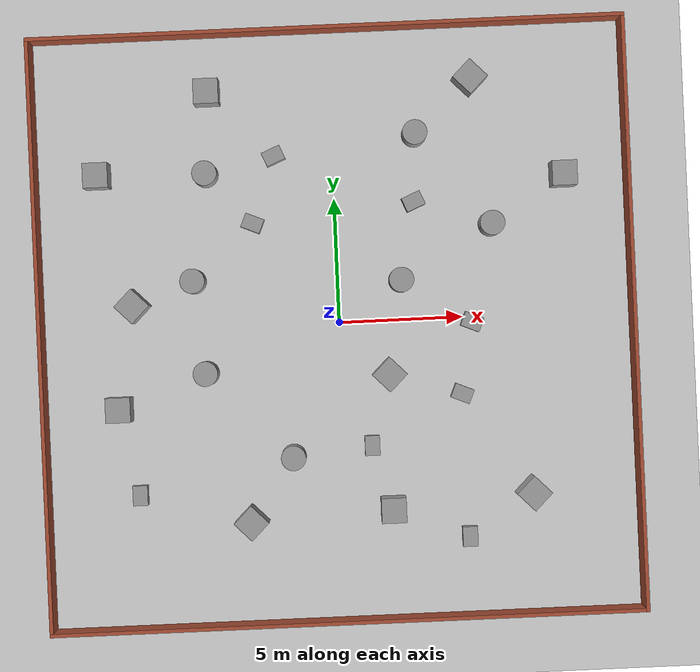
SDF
<sdf version="1.6">
 <world name="default">
  <light name="sun" type="directional">
   <pose>0 0 10 0 -0 0</pose>
   <diffuse>0.8 0.8 0.8 1</diffuse>
   <specular>0.2 0.2 0.2 1</specular>
   <attenuation>
    <range>1000</range>
    <constant>0.9</constant>
    <linear>0.01</linear>
    <quadratic>0.001</quadratic>
   </attenuation>
   <direction>-0.5 0.1 -0.9</direction>
  </light>
  <model name="ground_plane">
   <static>1</static>
   <link name="link">
    <collision name="collision">
     <geometry><plane><normal>0 0 1</normal><size>100 100</size></plane></geometry>
     <surface><friction><ode><mu>100</mu><mu2>50</mu2></ode></friction></surface>
    </collision>
    <visual name="visual">
     <cast_shadows>0</cast_shadows>
     <geometry><plane><normal>0 0 1</normal><size>100 100</size></plane></geometry>
     <material>
      <script><uri>file://media/materials/scripts/gazebo.material</uri><name>Gazebo/Grey</name></script>
     </material>
    </visual>
   </link>
  </model>
  <gravity>0 0 -9.8</gravity>
  <magnetic_field>6e-06 2.3e-05 -4.2e-05</magnetic_field>
  <atmosphere type="adiabatic"/>
  <physics name="default_physics" default="0" type="ode">
   <max_step_size>0.001</max_step_size>
   <real_time_factor>1</real_time_factor>
   <real_time_update_rate>1000</real_time_update_rate>
  </physics>
  <scene><ambient>0.4 0.4 0.4 1</ambient><background>0.7 0.7 0.7 1</background><shadows>1</shadows></scene>
  <spherical_coordinates>
   <surface_model>EARTH_WGS84</surface_model>
   <latitude_deg>0</latitude_deg>
   <longitude_deg>0</longitude_deg>
   <elevation>0</elevation>
   <heading_deg>0</heading_deg>
  </spherical_coordinates>
  <model name="24*24_brick_maze">
   <pose>-0.106814 -0.103419 0 0 -0 0</pose>
   <link name="Wall_0">
    <collision name="Wall_0_Collision">
     <geometry><box><size>24 0.15 1</size></box></geometry>
     <pose>0 0 0.5 0 -0 0</pose>
    </collision>
    <visual name="Wall_0_Visual">
     <pose>0 0 0.5 0 -0 0</pose>
     <geometry><box><size>24 0.15 1</size></box></geometry>
     <material>
      <script><uri>file://media/materials/scripts/gazebo.material</uri><name>Gazebo/Bricks</name></script>
      <ambient>1 1 1 1</ambient>
     </material>
     <meta><layer>0</layer></meta>
    </visual>
    <pose>0 11.925 0 0 -0 0</pose>
   </link>
   <link name="Wall_2">
    <collision name="Wall_2_Collision">
     <geometry><box><size>24 0.15 1</size></box></geometry>
     <pose>0 0 0.5 0 -0 0</pose>
    </collision>
    <visual name="Wall_2_Visual">
     <pose>0 0 0.5 0 -0 0</pose>
     <geometry><box><size>24 0.15 1</size></box></geometry>
     <material>
      <script><uri>file://media/materials/scripts/gazebo.material</uri><name>Gazebo/Bricks</name></script>
      <ambient>1 1 1 1</ambient>
     </material>
     <meta><layer>0</layer></meta>
    </visual>
    <pose>11.925 0 0 0 -0 -1.5708</pose>
   </link>
   <link name="Wall_4">
    <collision name="Wall_4_Collision">
     <geometry><box><size>24 0.15 1</size></box></geometry>
     <pose>0 0 0.5 0 -0 0</pose>
    </collision>
    <visual name="Wall_4_Visual">
     <pose>0 0 0.5 0 -0 0</pose>
     <geometry><box><size>24 0.15 1</size></box></geometry>
     <material>
      <script><uri>file://media/materials/scripts/gazebo.material</uri><name>Gazebo/Bricks</name></script>
      <ambient>1 1 1 1</ambient>
     </material>
     <meta><layer>0</layer></meta>
    </visual>
    <pose>0 -11.925 0 0 -0 3.14159</pose>
   </link>
   <link name="Wall_7">
    <collision name="Wall_7_Collision">
     <geometry><box><size>24 0.15 1</size></box></geometry>
     <pose>0 0 0.5 0 -0 0</pose>
    </collision>
    <visual name="Wall_7_Visual">
     <pose>0 0 0.5 0 -0 0</pose>
     <geometry><box><size>24 0.15 1</size></box></geometry>
     <material>
      <script><uri>file://media/materials/scripts/gazebo.material</uri><name>Gazebo/Bricks</name></script>
      <ambient>1 1 1 1</ambient>
     </material>
     <meta><layer>0</layer></meta>
    </visual>
    <pose>-11.925 0 0 0 -0 1.5708</pose>
   </link>
   <static>1</static>
  </model>
  <model name="box_1_left">
   <link name="link_0">
    <inertial>
     <mass>1</mass>
     <inertia>
      <ixx>0.166667</ixx>
      <ixy>0</ixy>
      <ixz>0</ixz>
      <iyy>0.166667</iyy>
      <iyz>0</iyz>
      <izz>0.166667</izz>
     </inertia>
     <pose>0 0 0 0 -0 0.4</pose>
    </inertial>
    <pose>0 0 0.5 0 -0 0.38</pose>
    <visual name="visual">
     <pose>0 0 0 0 -0 0.4</pose>
     <geometry><box><size>1 1 1</size></box></geometry>
     <material>
      <lighting>1</lighting>
      <script><uri>file://media/materials/scripts/gazebo.material</uri><name>Gazebo/Grey</name></script>
      <shader type="pixel"><normal_map>__default__</normal_map></shader>
      <ambient>0.3 0.3 0.3 1</ambient>
      <diffuse>0.7 0.7 0.7 1</diffuse>
      <specular>0.01 0.01 0.01 1</specular>
      <emissive>0 0 0 1</emissive>
     </material>
    </visual>
    <collision name="collision">
     <geometry><box><size>1 1 1</size></box></geometry>
     <surface>
      <friction>
       <ode><mu>1</mu><mu2>1</mu2><fdir1>0 0 0</fdir1><slip1>0</slip1><slip2>0</slip2></ode>
       <torsional>
        <coefficient>1</coefficient>
        <patch_radius>0</patch_radius>
        <surface_radius>0</surface_radius>
        <use_patch_radius>1</use_patch_radius>
        <ode><slip>0</slip></ode>
       </torsional>
      </friction>
      <bounce><restitution_coefficient>0</restitution_coefficient><threshold>1e+06</threshold></bounce>
      <contact>
       <collide_without_contact>0</collide_without_contact>
       <collide_without_contact_bitmask>1</collide_without_contact_bitmask>
       <collide_bitmask>1</collide_bitmask>
       <ode>
        <soft_cfm>0</soft_cfm>
        <soft_erp>0.2</soft_erp>
        <kp>1e+13</kp>
        <kd>1</kd>
        <max_vel>0.01</max_vel>
        <min_depth>0</min_depth>
       </ode>
       <bullet>
        <split_impulse>1</split_impulse>
        <split_impulse_penetration_threshold>-0.01</split_impulse_penetration_threshold>
        <soft_cfm>0</soft_cfm>
        <soft_erp>0.2</soft_erp>
        <kp>1e+13</kp>
        <kd>1</kd>
       </bullet>
      </contact>
     </surface>
    </collision>
   </link>
   <static>0</static>
   <pose>1.92513 -2.186 -5e-06 -9e-06 -4e-06 -1.2e-05</pose>
  </model>
  <model name="unit_cylinder">
   <pose>2.55074 1.59043 0.499994 -4e-06 -3e-06 -0</pose>
   <link name="link">
    <inertial>
     <mass>1</mass>
     <inertia><ixx>0.145833</ixx><ixy>0</ixy><ixz>0</ixz><iyy>0.145833</iyy><iyz>0</iyz><izz>0.125</izz></inertia>
    </inertial>
    <collision name="collision">
     <geometry><cylinder><radius>0.5</radius><length>1</length></cylinder></geometry>
    </collision>
    <visual name="visual">
     <geometry><cylinder><radius>0.5</radius><length>1</length></cylinder></geometry>
     <material>
      <script><name>Gazebo/Grey</name><uri>file://media/materials/scripts/gazebo.material</uri></script>
     </material>
    </visual>
   </link>
  </model>
  <model name="unit_cylinder_0">
   <pose>-2.07239 -5.35654 0.499994 -4e-06 -4e-06 -0</pose>
   <link name="link">
    <inertial>
     <mass>1</mass>
     <inertia><ixx>0.145833</ixx><ixy>0</ixy><ixz>0</ixz><iyy>0.145833</iyy><iyz>0</iyz><izz>0.125</izz></inertia>
    </inertial>
    <collision name="collision">
     <geometry><cylinder><radius>0.5</radius><length>1</length></cylinder></geometry>
    </collision>
    <visual name="visual">
     <geometry><cylinder><radius>0.5</radius><length>1</length></cylinder></geometry>
     <material>
      <script><name>Gazebo/Grey</name><uri>file://media/materials/scripts/gazebo.material</uri></script>
     </material>
    </visual>
   </link>
  </model>
  <model name="unit_cylinder_1">
   <pose>-5.44836 -1.84193 0.499998 3e-06 4e-06 -0</pose>
   <link name="link">
    <inertial>
     <mass>1</mass>
     <inertia><ixx>0.145833</ixx><ixy>0</ixy><ixz>0</ixz><iyy>0.145833</iyy><iyz>0</iyz><izz>0.125</izz></inertia>
    </inertial>
    <collision name="collision">
     <geometry><cylinder><radius>0.5</radius><length>1</length></cylinder></geometry>
    </collision>
    <visual name="visual">
     <geometry><cylinder><radius>0.5</radius><length>1</length></cylinder></geometry>
     <material>
      <script><name>Gazebo/Grey</name><uri>file://media/materials/scripts/gazebo.material</uri></script>
     </material>
    </visual>
   </link>
  </model>
  <model name="unit_cylinder_2">
   <pose>6.28258 3.70949 0.499992 -3e-06 -4e-06 -0</pose>
   <link name="link">
    <inertial>
     <mass>1</mass>
     <inertia><ixx>0.145833</ixx><ixy>0</ixy><ixz>0</ixz><iyy>0.145833</iyy><iyz>0</iyz><izz>0.125</izz></inertia>
    </inertial>
    <collision name="collision">
     <geometry><cylinder><radius>0.5</radius><length>1</length></cylinder></geometry>
    </collision>
    <visual name="visual">
     <geometry><cylinder><radius>0.5</radius><length>1</length></cylinder></geometry>
     <material>
      <script><name>Gazebo/Grey</name><uri>file://media/materials/scripts/gazebo.material</uri></script>
     </material>
    </visual>
   </link>
  </model>
  <model name="unit_cylinder_3">
   <pose>3.33053 7.45816 0.499998 3e-06 4e-06 -0</pose>
   <link name="link">
    <inertial>
     <mass>1</mass>
     <inertia><ixx>0.145833</ixx><ixy>0</ixy><ixz>0</ixz><iyy>0.145833</iyy><iyz>0</iyz><izz>0.125</izz></inertia>
    </inertial>
    <collision name="collision">
     <geometry><cylinder><radius>0.5</radius><length>1</length></cylinder></geometry>
    </collision>
    <visual name="visual">
     <geometry><cylinder><radius>0.5</radius><length>1</length></cylinder></geometry>
     <material>
      <script><name>Gazebo/Grey</name><uri>file://media/materials/scripts/gazebo.material</uri></script>
     </material>
    </visual>
   </link>
  </model>
  <model name="unit_cylinder_4">
   <pose>-5.15335 6.18433 0.499992 -3e-06 -4e-06 -0</pose>
   <link name="link">
    <inertial>
     <mass>1</mass>
     <inertia><ixx>0.145833</ixx><ixy>0</ixy><ixz>0</ixz><iyy>0.145833</iyy><iyz>0</iyz><izz>0.125</izz></inertia>
    </inertial>
    <collision name="collision">
     <geometry><cylinder><radius>0.5</radius><length>1</length></cylinder></geometry>
    </collision>
    <visual name="visual">
     <geometry><cylinder><radius>0.5</radius><length>1</length></cylinder></geometry>
     <material>
      <script><name>Gazebo/Grey</name><uri>file://media/materials/scripts/gazebo.material</uri></script>
     </material>
    </visual>
   </link>
  </model>
  <model name="box_1_length">
   <link name="link_0">
    <inertial>
     <mass>1</mass>
     <inertia>
      <ixx>0.166667</ixx>
      <ixy>0</ixy>
      <ixz>0</ixz>
      <iyy>0.166667</iyy>
      <iyz>0</iyz>
      <izz>0.166667</izz>
     </inertia>
    </inertial>
    <pose>0 0 0.5 0 -0 1.57</pose>
    <visual name="visual">
     <pose>0 0 0 0 -0 1.57</pose>
     <geometry><box><size>1 1 1</size></box></geometry>
     <material>
      <lighting>1</lighting>
      <script><uri>file://media/materials/scripts/gazebo.material</uri><name>Gazebo/Grey</name></script>
      <shader type="pixel"><normal_map>__default__</normal_map></shader>
      <ambient>0.3 0.3 0.3 1</ambient>
      <diffuse>0.7 0.7 0.7 1</diffuse>
      <specular>0.01 0.01 0.01 1</specular>
      <emissive>0 0 0 1</emissive>
     </material>
    </visual>
    <collision name="collision">
     <geometry><box><size>1 1 1</size></box></geometry>
     <surface>
      <friction>
       <ode><mu>1</mu><mu2>1</mu2><fdir1>0 0 0</fdir1><slip1>0</slip1><slip2>0</slip2></ode>
       <torsional>
        <coefficient>1</coefficient>
        <patch_radius>0</patch_radius>
        <surface_radius>0</surface_radius>
        <use_patch_radius>1</use_patch_radius>
        <ode><slip>0</slip></ode>
       </torsional>
      </friction>
      <bounce><restitution_coefficient>0</restitution_coefficient><threshold>1e+06</threshold></bounce>
      <contact>
       <collide_without_contact>0</collide_without_contact>
       <collide_without_contact_bitmask>1</collide_without_contact_bitmask>
       <collide_bitmask>1</collide_bitmask>
       <ode>
        <soft_cfm>0</soft_cfm>
        <soft_erp>0.2</soft_erp>
        <kp>1e+13</kp>
        <kd>1</kd>
        <max_vel>0.01</max_vel>
        <min_depth>0</min_depth>
       </ode>
       <bullet>
        <split_impulse>1</split_impulse>
        <split_impulse_penetration_threshold>-0.01</split_impulse_penetration_threshold>
        <soft_cfm>0</soft_cfm>
        <soft_erp>0.2</soft_erp>
        <kp>1e+13</kp>
        <kd>1</kd>
       </bullet>
      </contact>
     </surface>
    </collision>
   </link>
   <static>0</static>
   <pose>1.85316 -7.62223 -5e-06 -1e-05 0 0</pose>
  </model>
  <model name="box_1_left_0">
   <link name="link_0">
    <inertial>
     <mass>1</mass>
     <inertia>
      <ixx>0.166667</ixx>
      <ixy>0</ixy>
      <ixz>0</ixz>
      <iyy>0.166667</iyy>
      <iyz>0</iyz>
      <izz>0.166667</izz>
     </inertia>
     <pose>0 0 0 0 -0 0.4</pose>
    </inertial>
    <pose>0 0 0.5 0 -0 0.38</pose>
    <visual name="visual">
     <pose>0 0 0 0 -0 0.4</pose>
     <geometry><box><size>1 1 1</size></box></geometry>
     <material>
      <lighting>1</lighting>
      <script><uri>file://media/materials/scripts/gazebo.material</uri><name>Gazebo/Grey</name></script>
      <shader type="pixel"><normal_map>__default__</normal_map></shader>
      <ambient>0.3 0.3 0.3 1</ambient>
      <diffuse>0.7 0.7 0.7 1</diffuse>
      <specular>0.01 0.01 0.01 1</specular>
      <emissive>0 0 0 1</emissive>
     </material>
    </visual>
    <collision name="collision">
     <geometry><box><size>1 1 1</size></box></geometry>
     <surface>
      <friction>
       <ode><mu>1</mu><mu2>1</mu2><fdir1>0 0 0</fdir1><slip1>0</slip1><slip2>0</slip2></ode>
       <torsional>
        <coefficient>1</coefficient>
        <patch_radius>0</patch_radius>
        <surface_radius>0</surface_radius>
        <use_patch_radius>1</use_patch_radius>
        <ode><slip>0</slip></ode>
       </torsional>
      </friction>
      <bounce><restitution_coefficient>0</restitution_coefficient><threshold>1e+06</threshold></bounce>
      <contact>
       <collide_without_contact>0</collide_without_contact>
       <collide_without_contact_bitmask>1</collide_without_contact_bitmask>
       <collide_bitmask>1</collide_bitmask>
       <ode>
        <soft_cfm>0</soft_cfm>
        <soft_erp>0.2</soft_erp>
        <kp>1e+13</kp>
        <kd>1</kd>
        <max_vel>0.01</max_vel>
        <min_depth>0</min_depth>
       </ode>
       <bullet>
        <split_impulse>1</split_impulse>
        <split_impulse_penetration_threshold>-0.01</split_impulse_penetration_threshold>
        <soft_cfm>0</soft_cfm>
        <soft_erp>0.2</soft_erp>
        <kp>1e+13</kp>
        <kd>1</kd>
       </bullet>
      </contact>
     </surface>
    </collision>
   </link>
   <static>0</static>
   <pose>-3.86115 -7.89291 -5e-06 -9e-06 -4e-06 -7e-06</pose>
  </model>
  <model name="box_1_left_1">
   <link name="link_0">
    <inertial>
     <mass>1</mass>
     <inertia>
      <ixx>0.166667</ixx>
      <ixy>0</ixy>
      <ixz>0</ixz>
      <iyy>0.166667</iyy>
      <iyz>0</iyz>
      <izz>0.166667</izz>
     </inertia>
     <pose>0 0 0 0 -0 0.4</pose>
    </inertial>
    <pose>0 0 0.5 0 -0 0.38</pose>
    <visual name="visual">
     <pose>0 0 0 0 -0 0.4</pose>
     <geometry><box><size>1 1 1</size></box></geometry>
     <material>
      <lighting>1</lighting>
      <script><uri>file://media/materials/scripts/gazebo.material</uri><name>Gazebo/Grey</name></script>
      <shader type="pixel"><normal_map>__default__</normal_map></shader>
      <ambient>0.3 0.3 0.3 1</ambient>
      <diffuse>0.7 0.7 0.7 1</diffuse>
      <specular>0.01 0.01 0.01 1</specular>
      <emissive>0 0 0 1</emissive>
     </material>
    </visual>
    <collision name="collision">
     <geometry><box><size>1 1 1</size></box></geometry>
     <surface>
      <friction>
       <ode><mu>1</mu><mu2>1</mu2><fdir1>0 0 0</fdir1><slip1>0</slip1><slip2>0</slip2></ode>
       <torsional>
        <coefficient>1</coefficient>
        <patch_radius>0</patch_radius>
        <surface_radius>0</surface_radius>
        <use_patch_radius>1</use_patch_radius>
        <ode><slip>0</slip></ode>
       </torsional>
      </friction>
      <bounce><restitution_coefficient>0</restitution_coefficient><threshold>1e+06</threshold></bounce>
      <contact>
       <collide_without_contact>0</collide_without_contact>
       <collide_without_contact_bitmask>1</collide_without_contact_bitmask>
       <collide_bitmask>1</collide_bitmask>
       <ode>
        <soft_cfm>0</soft_cfm>
        <soft_erp>0.2</soft_erp>
        <kp>1e+13</kp>
        <kd>1</kd>
        <max_vel>0.01</max_vel>
        <min_depth>0</min_depth>
       </ode>
       <bullet>
        <split_impulse>1</split_impulse>
        <split_impulse_penetration_threshold>-0.01</split_impulse_penetration_threshold>
        <soft_cfm>0</soft_cfm>
        <soft_erp>0.2</soft_erp>
        <kp>1e+13</kp>
        <kd>1</kd>
       </bullet>
      </contact>
     </surface>
    </collision>
   </link>
   <static>0</static>
   <pose>-8.28692 0.99396 -5e-06 -9e-06 -4e-06 -7e-06</pose>
  </model>
  <model name="box_1_length_0">
   <link name="link_0">
    <inertial>
     <mass>1</mass>
     <inertia>
      <ixx>0.166667</ixx>
      <ixy>0</ixy>
      <ixz>0</ixz>
      <iyy>0.166667</iyy>
      <iyz>0</iyz>
      <izz>0.166667</izz>
     </inertia>
    </inertial>
    <pose>0 0 0.5 0 -0 1.57</pose>
    <visual name="visual">
     <pose>0 0 0 0 -0 1.57</pose>
     <geometry><box><size>1 1 1</size></box></geometry>
     <material>
      <lighting>1</lighting>
      <script><uri>file://media/materials/scripts/gazebo.material</uri><name>Gazebo/Grey</name></script>
      <shader type="pixel"><normal_map>__default__</normal_map></shader>
      <ambient>0.3 0.3 0.3 1</ambient>
      <diffuse>0.7 0.7 0.7 1</diffuse>
      <specular>0.01 0.01 0.01 1</specular>
      <emissive>0 0 0 1</emissive>
     </material>
    </visual>
    <collision name="collision">
     <geometry><box><size>1 1 1</size></box></geometry>
     <surface>
      <friction>
       <ode><mu>1</mu><mu2>1</mu2><fdir1>0 0 0</fdir1><slip1>0</slip1><slip2>0</slip2></ode>
       <torsional>
        <coefficient>1</coefficient>
        <patch_radius>0</patch_radius>
        <surface_radius>0</surface_radius>
        <use_patch_radius>1</use_patch_radius>
        <ode><slip>0</slip></ode>
       </torsional>
      </friction>
      <bounce><restitution_coefficient>0</restitution_coefficient><threshold>1e+06</threshold></bounce>
      <contact>
       <collide_without_contact>0</collide_without_contact>
       <collide_without_contact_bitmask>1</collide_without_contact_bitmask>
       <collide_bitmask>1</collide_bitmask>
       <ode>
        <soft_cfm>0</soft_cfm>
        <soft_erp>0.2</soft_erp>
        <kp>1e+13</kp>
        <kd>1</kd>
        <max_vel>0.01</max_vel>
        <min_depth>0</min_depth>
       </ode>
       <bullet>
        <split_impulse>1</split_impulse>
        <split_impulse_penetration_threshold>-0.01</split_impulse_penetration_threshold>
        <soft_cfm>0</soft_cfm>
        <soft_erp>0.2</soft_erp>
        <kp>1e+13</kp>
        <kd>1</kd>
       </bullet>
      </contact>
     </surface>
    </collision>
   </link>
   <static>0</static>
   <pose>-9.01011 -3.14155 -5e-06 0 -1e-05 0</pose>
  </model>
  <model name="box_1_left_2">
   <link name="link_0">
    <inertial>
     <mass>1</mass>
     <inertia>
      <ixx>0.166667</ixx>
      <ixy>0</ixy>
      <ixz>0</ixz>
      <iyy>0.166667</iyy>
      <iyz>0</iyz>
      <izz>0.166667</izz>
     </inertia>
     <pose>0 0 0 0 -0 0.4</pose>
    </inertial>
    <pose>0 0 0.5 0 -0 0.38</pose>
    <visual name="visual">
     <pose>0 0 0 0 -0 0.4</pose>
     <geometry><box><size>1 1 1</size></box></geometry>
     <material>
      <lighting>1</lighting>
      <script><uri>file://media/materials/scripts/gazebo.material</uri><name>Gazebo/Grey</name></script>
      <shader type="pixel"><normal_map>__default__</normal_map></shader>
      <ambient>0.3 0.3 0.3 1</ambient>
      <diffuse>0.7 0.7 0.7 1</diffuse>
      <specular>0.01 0.01 0.01 1</specular>
      <emissive>0 0 0 1</emissive>
     </material>
    </visual>
    <collision name="collision">
     <geometry><box><size>1 1 1</size></box></geometry>
     <surface>
      <friction>
       <ode><mu>1</mu><mu2>1</mu2><fdir1>0 0 0</fdir1><slip1>0</slip1><slip2>0</slip2></ode>
       <torsional>
        <coefficient>1</coefficient>
        <patch_radius>0</patch_radius>
        <surface_radius>0</surface_radius>
        <use_patch_radius>1</use_patch_radius>
        <ode><slip>0</slip></ode>
       </torsional>
      </friction>
      <bounce><restitution_coefficient>0</restitution_coefficient><threshold>1e+06</threshold></bounce>
      <contact>
       <collide_without_contact>0</collide_without_contact>
       <collide_without_contact_bitmask>1</collide_without_contact_bitmask>
       <collide_bitmask>1</collide_bitmask>
       <ode>
        <soft_cfm>0</soft_cfm>
        <soft_erp>0.2</soft_erp>
        <kp>1e+13</kp>
        <kd>1</kd>
        <max_vel>0.01</max_vel>
        <min_depth>0</min_depth>
       </ode>
       <bullet>
        <split_impulse>1</split_impulse>
        <split_impulse_penetration_threshold>-0.01</split_impulse_penetration_threshold>
        <soft_cfm>0</soft_cfm>
        <soft_erp>0.2</soft_erp>
        <kp>1e+13</kp>
        <kd>1</kd>
       </bullet>
      </contact>
     </surface>
    </collision>
   </link>
   <static>0</static>
   <pose>7.51077 -7.18702 -5e-06 -9e-06 -4e-06 -6e-06</pose>
  </model>
  <model name="box_2_length">
   <link name="link_3">
    <inertial>
     <mass>0.20289</mass>
     <inertia>
      <ixx>0.00986764</ixx>
      <ixy>0</ixy>
      <ixz>0</ixz>
      <iyy>0.018296</iyy>
      <iyz>0</iyz>
      <izz>0.0253866</izz>
     </inertia>
    </inertial>
    <pose>0 0 0.2 0 -0 1.57</pose>
    <visual name="visual">
     <geometry><box><size>0.8 0.6 0.4</size></box></geometry>
     <material>
      <lighting>1</lighting>
      <script><uri>file://media/materials/scripts/gazebo.material</uri><name>Gazebo/Grey</name></script>
      <shader type="pixel"><normal_map>__default__</normal_map></shader>
     </material>
    </visual>
    <collision name="collision">
     <geometry><box><size>0.8 0.6 0.4</size></box></geometry>
     <surface>
      <friction>
       <ode><mu>1</mu><mu2>1</mu2><fdir1>0 0 0</fdir1><slip1>0</slip1><slip2>0</slip2></ode>
       <torsional>
        <coefficient>1</coefficient>
        <patch_radius>0</patch_radius>
        <surface_radius>0</surface_radius>
        <use_patch_radius>1</use_patch_radius>
        <ode><slip>0</slip></ode>
       </torsional>
      </friction>
      <bounce><restitution_coefficient>0</restitution_coefficient><threshold>1e+06</threshold></bounce>
      <contact>
       <collide_without_contact>0</collide_without_contact>
       <collide_without_contact_bitmask>1</collide_without_contact_bitmask>
       <collide_bitmask>1</collide_bitmask>
       <ode>
        <soft_cfm>0</soft_cfm>
        <soft_erp>0.2</soft_erp>
        <kp>1e+13</kp>
        <kd>1</kd>
        <max_vel>0.01</max_vel>
        <min_depth>0</min_depth>
       </ode>
       <bullet>
        <split_impulse>1</split_impulse>
        <split_impulse_penetration_threshold>-0.01</split_impulse_penetration_threshold>
        <soft_cfm>0</soft_cfm>
        <soft_erp>0.2</soft_erp>
        <kp>1e+13</kp>
        <kd>1</kd>
       </bullet>
      </contact>
     </surface>
    </collision>
   </link>
   <static>0</static>
   <pose>4.90503 -8.87267 -0 0 -0 0</pose>
  </model>
  <model name="box_2_length_0">
   <link name="link_3">
    <inertial>
     <mass>0.20289</mass>
     <inertia>
      <ixx>0.00986764</ixx>
      <ixy>0</ixy>
      <ixz>0</ixz>
      <iyy>0.018296</iyy>
      <iyz>0</iyz>
      <izz>0.0253866</izz>
     </inertia>
    </inertial>
    <pose>0 0 0.2 0 -0 1.57</pose>
    <visual name="visual">
     <geometry><box><size>0.8 0.6 0.4</size></box></geometry>
     <material>
      <lighting>1</lighting>
      <script><uri>file://media/materials/scripts/gazebo.material</uri><name>Gazebo/Grey</name></script>
      <shader type="pixel"><normal_map>__default__</normal_map></shader>
     </material>
    </visual>
    <collision name="collision">
     <geometry><box><size>0.8 0.6 0.4</size></box></geometry>
     <surface>
      <friction>
       <ode><mu>1</mu><mu2>1</mu2><fdir1>0 0 0</fdir1><slip1>0</slip1><slip2>0</slip2></ode>
       <torsional>
        <coefficient>1</coefficient>
        <patch_radius>0</patch_radius>
        <surface_radius>0</surface_radius>
        <use_patch_radius>1</use_patch_radius>
        <ode><slip>0</slip></ode>
       </torsional>
      </friction>
      <bounce><restitution_coefficient>0</restitution_coefficient><threshold>1e+06</threshold></bounce>
      <contact>
       <collide_without_contact>0</collide_without_contact>
       <collide_without_contact_bitmask>1</collide_without_contact_bitmask>
       <collide_bitmask>1</collide_bitmask>
       <ode>
        <soft_cfm>0</soft_cfm>
        <soft_erp>0.2</soft_erp>
        <kp>1e+13</kp>
        <kd>1</kd>
        <max_vel>0.01</max_vel>
        <min_depth>0</min_depth>
       </ode>
       <bullet>
        <split_impulse>1</split_impulse>
        <split_impulse_penetration_threshold>-0.01</split_impulse_penetration_threshold>
        <soft_cfm>0</soft_cfm>
        <soft_erp>0.2</soft_erp>
        <kp>1e+13</kp>
        <kd>1</kd>
       </bullet>
      </contact>
     </surface>
    </collision>
   </link>
   <static>0</static>
   <pose>-8.33813 -6.65137 -0 0 -0 0</pose>
  </model>
  <model name="box_2_right">
   <link name="link_3">
    <inertial>
     <mass>0.20289</mass>
     <inertia>
      <ixx>0.00986764</ixx>
      <ixy>0</ixy>
      <ixz>0</ixz>
      <iyy>0.018296</iyy>
      <iyz>0</iyz>
      <izz>0.0253866</izz>
     </inertia>
    </inertial>
    <pose>0 0 0.2 0 -0 -0.4</pose>
    <visual name="visual">
     <geometry><box><size>0.8 0.6 0.4</size></box></geometry>
     <material>
      <lighting>1</lighting>
      <script><uri>file://media/materials/scripts/gazebo.material</uri><name>Gazebo/Grey</name></script>
      <shader type="pixel"><normal_map>__default__</normal_map></shader>
     </material>
    </visual>
    <collision name="collision">
     <geometry><box><size>0.8 0.6 0.4</size></box></geometry>
     <surface>
      <friction>
       <ode><mu>1</mu><mu2>1</mu2><fdir1>0 0 0</fdir1><slip1>0</slip1><slip2>0</slip2></ode>
       <torsional>
        <coefficient>1</coefficient>
        <patch_radius>0</patch_radius>
        <surface_radius>0</surface_radius>
        <use_patch_radius>1</use_patch_radius>
        <ode><slip>0</slip></ode>
       </torsional>
      </friction>
      <bounce><restitution_coefficient>0</restitution_coefficient><threshold>1e+06</threshold></bounce>
      <contact>
       <collide_without_contact>0</collide_without_contact>
       <collide_without_contact_bitmask>1</collide_without_contact_bitmask>
       <collide_bitmask>1</collide_bitmask>
       <ode>
        <soft_cfm>0</soft_cfm>
        <soft_erp>0.2</soft_erp>
        <kp>1e+13</kp>
        <kd>1</kd>
        <max_vel>0.01</max_vel>
        <min_depth>0</min_depth>
       </ode>
       <bullet>
        <split_impulse>1</split_impulse>
        <split_impulse_penetration_threshold>-0.01</split_impulse_penetration_threshold>
        <soft_cfm>0</soft_cfm>
        <soft_erp>0.2</soft_erp>
        <kp>1e+13</kp>
        <kd>1</kd>
       </bullet>
      </contact>
     </surface>
    </collision>
   </link>
   <static>0</static>
   <pose>5.35728 -0.213845 -0 0 -0 0</pose>
  </model>
  <model name="box_2_left">
   <link name="link_3">
    <inertial>
     <mass>0.20289</mass>
     <inertia>
      <ixx>0.00986764</ixx>
      <ixy>0</ixy>
      <ixz>0</ixz>
      <iyy>0.018296</iyy>
      <iyz>0</iyz>
      <izz>0.0253866</izz>
     </inertia>
    </inertial>
    <pose>0 0 0.2 0 -0 0.4</pose>
    <visual name="visual">
     <geometry><box><size>0.8 0.6 0.4</size></box></geometry>
     <material>
      <lighting>1</lighting>
      <script><uri>file://media/materials/scripts/gazebo.material</uri><name>Gazebo/Grey</name></script>
      <shader type="pixel"><normal_map>__default__</normal_map></shader>
     </material>
    </visual>
    <collision name="collision">
     <geometry><box><size>0.8 0.6 0.4</size></box></geometry>
     <surface>
      <friction>
       <ode><mu>1</mu><mu2>1</mu2><fdir1>0 0 0</fdir1><slip1>0</slip1><slip2>0</slip2></ode>
       <torsional>
        <coefficient>1</coefficient>
        <patch_radius>0</patch_radius>
        <surface_radius>0</surface_radius>
        <use_patch_radius>1</use_patch_radius>
        <ode><slip>0</slip></ode>
       </torsional>
      </friction>
      <bounce><restitution_coefficient>0</restitution_coefficient><threshold>1e+06</threshold></bounce>
      <contact>
       <collide_without_contact>0</collide_without_contact>
       <collide_without_contact_bitmask>1</collide_without_contact_bitmask>
       <collide_bitmask>1</collide_bitmask>
       <ode>
        <soft_cfm>0</soft_cfm>
        <soft_erp>0.2</soft_erp>
        <kp>1e+13</kp>
        <kd>1</kd>
        <max_vel>0.01</max_vel>
        <min_depth>0</min_depth>
       </ode>
       <bullet>
        <split_impulse>1</split_impulse>
        <split_impulse_penetration_threshold>-0.01</split_impulse_penetration_threshold>
        <soft_cfm>0</soft_cfm>
        <soft_erp>0.2</soft_erp>
        <kp>1e+13</kp>
        <kd>1</kd>
       </bullet>
      </contact>
     </surface>
    </collision>
   </link>
   <static>0</static>
   <pose>3.18606 4.74586 -0 0 -0 0</pose>
  </model>
  <model name="box_1_length_1">
   <link name="link_0">
    <inertial>
     <mass>1</mass>
     <inertia>
      <ixx>0.166667</ixx>
      <ixy>0</ixy>
      <ixz>0</ixz>
      <iyy>0.166667</iyy>
      <iyz>0</iyz>
      <izz>0.166667</izz>
     </inertia>
    </inertial>
    <pose>0 0 0.5 0 -0 1.57</pose>
    <visual name="visual">
     <pose>0 0 0 0 -0 1.57</pose>
     <geometry><box><size>1 1 1</size></box></geometry>
     <material>
      <lighting>1</lighting>
      <script><uri>file://media/materials/scripts/gazebo.material</uri><name>Gazebo/Grey</name></script>
      <shader type="pixel"><normal_map>__default__</normal_map></shader>
      <ambient>0.3 0.3 0.3 1</ambient>
      <diffuse>0.7 0.7 0.7 1</diffuse>
      <specular>0.01 0.01 0.01 1</specular>
      <emissive>0 0 0 1</emissive>
     </material>
    </visual>
    <collision name="collision">
     <geometry><box><size>1 1 1</size></box></geometry>
     <surface>
      <friction>
       <ode><mu>1</mu><mu2>1</mu2><fdir1>0 0 0</fdir1><slip1>0</slip1><slip2>0</slip2></ode>
       <torsional>
        <coefficient>1</coefficient>
        <patch_radius>0</patch_radius>
        <surface_radius>0</surface_radius>
        <use_patch_radius>1</use_patch_radius>
        <ode><slip>0</slip></ode>
       </torsional>
      </friction>
      <bounce><restitution_coefficient>0</restitution_coefficient><threshold>1e+06</threshold></bounce>
      <contact>
       <collide_without_contact>0</collide_without_contact>
       <collide_without_contact_bitmask>1</collide_without_contact_bitmask>
       <collide_bitmask>1</collide_bitmask>
       <ode>
        <soft_cfm>0</soft_cfm>
        <soft_erp>0.2</soft_erp>
        <kp>1e+13</kp>
        <kd>1</kd>
        <max_vel>0.01</max_vel>
        <min_depth>0</min_depth>
       </ode>
       <bullet>
        <split_impulse>1</split_impulse>
        <split_impulse_penetration_threshold>-0.01</split_impulse_penetration_threshold>
        <soft_cfm>0</soft_cfm>
        <soft_erp>0.2</soft_erp>
        <kp>1e+13</kp>
        <kd>1</kd>
       </bullet>
      </contact>
     </surface>
    </collision>
   </link>
   <static>0</static>
   <pose>9.25052 5.57855 -5e-06 -1e-05 0 0</pose>
  </model>
  <model name="box_1_left_3">
   <link name="link_0">
    <inertial>
     <mass>1</mass>
     <inertia>
      <ixx>0.166667</ixx>
      <ixy>0</ixy>
      <ixz>0</ixz>
      <iyy>0.166667</iyy>
      <iyz>0</iyz>
      <izz>0.166667</izz>
     </inertia>
     <pose>0 0 0 0 -0 0.4</pose>
    </inertial>
    <pose>0 0 0.5 0 -0 0.38</pose>
    <visual name="visual">
     <pose>0 0 0 0 -0 0.4</pose>
     <geometry><box><size>1 1 1</size></box></geometry>
     <material>
      <lighting>1</lighting>
      <script><uri>file://media/materials/scripts/gazebo.material</uri><name>Gazebo/Grey</name></script>
      <shader type="pixel"><normal_map>__default__</normal_map></shader>
      <ambient>0.3 0.3 0.3 1</ambient>
      <diffuse>0.7 0.7 0.7 1</diffuse>
      <specular>0.01 0.01 0.01 1</specular>
      <emissive>0 0 0 1</emissive>
     </material>
    </visual>
    <collision name="collision">
     <geometry><box><size>1 1 1</size></box></geometry>
     <surface>
      <friction>
       <ode><mu>1</mu><mu2>1</mu2><fdir1>0 0 0</fdir1><slip1>0</slip1><slip2>0</slip2></ode>
       <torsional>
        <coefficient>1</coefficient>
        <patch_radius>0</patch_radius>
        <surface_radius>0</surface_radius>
        <use_patch_radius>1</use_patch_radius>
        <ode><slip>0</slip></ode>
       </torsional>
      </friction>
      <bounce><restitution_coefficient>0</restitution_coefficient><threshold>1e+06</threshold></bounce>
      <contact>
       <collide_without_contact>0</collide_without_contact>
       <collide_without_contact_bitmask>1</collide_without_contact_bitmask>
       <collide_bitmask>1</collide_bitmask>
       <ode>
        <soft_cfm>0</soft_cfm>
        <soft_erp>0.2</soft_erp>
        <kp>1e+13</kp>
        <kd>1</kd>
        <max_vel>0.01</max_vel>
        <min_depth>0</min_depth>
       </ode>
       <bullet>
        <split_impulse>1</split_impulse>
        <split_impulse_penetration_threshold>-0.01</split_impulse_penetration_threshold>
        <soft_cfm>0</soft_cfm>
        <soft_erp>0.2</soft_erp>
        <kp>1e+13</kp>
        <kd>1</kd>
       </bullet>
      </contact>
     </surface>
    </collision>
   </link>
   <static>0</static>
   <pose>5.63509 9.5909 -5e-06 -9e-06 -4e-06 -3e-06</pose>
  </model>
  <model name="box_2_left_0">
   <link name="link_3">
    <inertial>
     <mass>0.20289</mass>
     <inertia>
      <ixx>0.00986764</ixx>
      <ixy>0</ixy>
      <ixz>0</ixz>
      <iyy>0.018296</iyy>
      <iyz>0</iyz>
      <izz>0.0253866</izz>
     </inertia>
    </inertial>
    <pose>0 0 0.2 0 -0 0.4</pose>
    <visual name="visual">
     <geometry><box><size>0.8 0.6 0.4</size></box></geometry>
     <material>
      <lighting>1</lighting>
      <script><uri>file://media/materials/scripts/gazebo.material</uri><name>Gazebo/Grey</name></script>
      <shader type="pixel"><normal_map>__default__</normal_map></shader>
     </material>
    </visual>
    <collision name="collision">
     <geometry><box><size>0.8 0.6 0.4</size></box></geometry>
     <surface>
      <friction>
       <ode><mu>1</mu><mu2>1</mu2><fdir1>0 0 0</fdir1><slip1>0</slip1><slip2>0</slip2></ode>
       <torsional>
        <coefficient>1</coefficient>
        <patch_radius>0</patch_radius>
        <surface_radius>0</surface_radius>
        <use_patch_radius>1</use_patch_radius>
        <ode><slip>0</slip></ode>
       </torsional>
      </friction>
      <bounce><restitution_coefficient>0</restitution_coefficient><threshold>1e+06</threshold></bounce>
      <contact>
       <collide_without_contact>0</collide_without_contact>
       <collide_without_contact_bitmask>1</collide_without_contact_bitmask>
       <collide_bitmask>1</collide_bitmask>
       <ode>
        <soft_cfm>0</soft_cfm>
        <soft_erp>0.2</soft_erp>
        <kp>1e+13</kp>
        <kd>1</kd>
        <max_vel>0.01</max_vel>
        <min_depth>0</min_depth>
       </ode>
       <bullet>
        <split_impulse>1</split_impulse>
        <split_impulse_penetration_threshold>-0.01</split_impulse_penetration_threshold>
        <soft_cfm>0</soft_cfm>
        <soft_erp>0.2</soft_erp>
        <kp>1e+13</kp>
        <kd>1</kd>
       </bullet>
      </contact>
     </surface>
    </collision>
   </link>
   <static>0</static>
   <pose>-2.39053 6.82341 -0 0 -0 0</pose>
  </model>
  <model name="box_1_length_2">
   <link name="link_0">
    <inertial>
     <mass>1</mass>
     <inertia>
      <ixx>0.166667</ixx>
      <ixy>0</ixy>
      <ixz>0</ixz>
      <iyy>0.166667</iyy>
      <iyz>0</iyz>
      <izz>0.166667</izz>
     </inertia>
    </inertial>
    <pose>0 0 0.5 0 -0 1.57</pose>
    <visual name="visual">
     <pose>0 0 0 0 -0 1.57</pose>
     <geometry><box><size>1 1 1</size></box></geometry>
     <material>
      <lighting>1</lighting>
      <script><uri>file://media/materials/scripts/gazebo.material</uri><name>Gazebo/Grey</name></script>
      <shader type="pixel"><normal_map>__default__</normal_map></shader>
      <ambient>0.3 0.3 0.3 1</ambient>
      <diffuse>0.7 0.7 0.7 1</diffuse>
      <specular>0.01 0.01 0.01 1</specular>
      <emissive>0 0 0 1</emissive>
     </material>
    </visual>
    <collision name="collision">
     <geometry><box><size>1 1 1</size></box></geometry>
     <surface>
      <friction>
       <ode><mu>1</mu><mu2>1</mu2><fdir1>0 0 0</fdir1><slip1>0</slip1><slip2>0</slip2></ode>
       <torsional>
        <coefficient>1</coefficient>
        <patch_radius>0</patch_radius>
        <surface_radius>0</surface_radius>
        <use_patch_radius>1</use_patch_radius>
        <ode><slip>0</slip></ode>
       </torsional>
      </friction>
      <bounce><restitution_coefficient>0</restitution_coefficient><threshold>1e+06</threshold></bounce>
      <contact>
       <collide_without_contact>0</collide_without_contact>
       <collide_without_contact_bitmask>1</collide_without_contact_bitmask>
       <collide_bitmask>1</collide_bitmask>
       <ode>
        <soft_cfm>0</soft_cfm>
        <soft_erp>0.2</soft_erp>
        <kp>1e+13</kp>
        <kd>1</kd>
        <max_vel>0.01</max_vel>
        <min_depth>0</min_depth>
       </ode>
       <bullet>
        <split_impulse>1</split_impulse>
        <split_impulse_penetration_threshold>-0.01</split_impulse_penetration_threshold>
        <soft_cfm>0</soft_cfm>
        <soft_erp>0.2</soft_erp>
        <kp>1e+13</kp>
        <kd>1</kd>
       </bullet>
      </contact>
     </surface>
    </collision>
   </link>
   <static>0</static>
   <pose>-4.9561 9.46725 -5e-06 0 -1e-05 0</pose>
  </model>
  <model name="box_1_length_3">
   <link name="link_0">
    <inertial>
     <mass>1</mass>
     <inertia>
      <ixx>0.166667</ixx>
      <ixy>0</ixy>
      <ixz>0</ixz>
      <iyy>0.166667</iyy>
      <iyz>0</iyz>
      <izz>0.166667</izz>
     </inertia>
    </inertial>
    <pose>0 0 0.5 0 -0 1.57</pose>
    <visual name="visual">
     <pose>0 0 0 0 -0 1.57</pose>
     <geometry><box><size>1 1 1</size></box></geometry>
     <material>
      <lighting>1</lighting>
      <script><uri>file://media/materials/scripts/gazebo.material</uri><name>Gazebo/Grey</name></script>
      <shader type="pixel"><normal_map>__default__</normal_map></shader>
      <ambient>0.3 0.3 0.3 1</ambient>
      <diffuse>0.7 0.7 0.7 1</diffuse>
      <specular>0.01 0.01 0.01 1</specular>
      <emissive>0 0 0 1</emissive>
     </material>
    </visual>
    <collision name="collision">
     <geometry><box><size>1 1 1</size></box></geometry>
     <surface>
      <friction>
       <ode><mu>1</mu><mu2>1</mu2><fdir1>0 0 0</fdir1><slip1>0</slip1><slip2>0</slip2></ode>
       <torsional>
        <coefficient>1</coefficient>
        <patch_radius>0</patch_radius>
        <surface_radius>0</surface_radius>
        <use_patch_radius>1</use_patch_radius>
        <ode><slip>0</slip></ode>
       </torsional>
      </friction>
      <bounce><restitution_coefficient>0</restitution_coefficient><threshold>1e+06</threshold></bounce>
      <contact>
       <collide_without_contact>0</collide_without_contact>
       <collide_without_contact_bitmask>1</collide_without_contact_bitmask>
       <collide_bitmask>1</collide_bitmask>
       <ode>
        <soft_cfm>0</soft_cfm>
        <soft_erp>0.2</soft_erp>
        <kp>1e+13</kp>
        <kd>1</kd>
        <max_vel>0.01</max_vel>
        <min_depth>0</min_depth>
       </ode>
       <bullet>
        <split_impulse>1</split_impulse>
        <split_impulse_penetration_threshold>-0.01</split_impulse_penetration_threshold>
        <soft_cfm>0</soft_cfm>
        <soft_erp>0.2</soft_erp>
        <kp>1e+13</kp>
        <kd>1</kd>
       </bullet>
      </contact>
     </surface>
    </collision>
   </link>
   <static>0</static>
   <pose>-9.5166 6.29142 -5e-06 0 -1e-05 0</pose>
  </model>
  <model name="unit_cylinder_5">
   <pose>-5.81973 1.89093 0.499992 -3e-06 -4e-06 -0</pose>
   <link name="link">
    <inertial>
     <mass>1</mass>
     <inertia><ixx>0.145833</ixx><ixy>0</ixy><ixz>0</ixz><iyy>0.145833</iyy><iyz>0</iyz><izz>0.125</izz></inertia>
    </inertial>
    <collision name="collision">
     <geometry><cylinder><radius>0.5</radius><length>1</length></cylinder></geometry>
    </collision>
    <visual name="visual">
     <geometry><cylinder><radius>0.5</radius><length>1</length></cylinder></geometry>
     <material>
      <script><name>Gazebo/Grey</name><uri>file://media/materials/scripts/gazebo.material</uri></script>
     </material>
    </visual>
   </link>
  </model>
  <model name="box_2_right_0">
   <link name="link_3">
    <inertial>
     <mass>0.20289</mass>
     <inertia>
      <ixx>0.00986764</ixx>
      <ixy>0</ixy>
      <ixz>0</ixz>
      <iyy>0.018296</iyy>
      <iyz>0</iyz>
      <izz>0.0253866</izz>
     </inertia>
    </inertial>
    <pose>0 0 0.2 0 -0 -0.4</pose>
    <visual name="visual">
     <geometry><box><size>0.8 0.6 0.4</size></box></geometry>
     <material>
      <lighting>1</lighting>
      <script><uri>file://media/materials/scripts/gazebo.material</uri><name>Gazebo/Grey</name></script>
      <shader type="pixel"><normal_map>__default__</normal_map></shader>
     </material>
    </visual>
    <collision name="collision">
     <geometry><box><size>0.8 0.6 0.4</size></box></geometry>
     <surface>
      <friction>
       <ode><mu>1</mu><mu2>1</mu2><fdir1>0 0 0</fdir1><slip1>0</slip1><slip2>0</slip2></ode>
       <torsional>
        <coefficient>1</coefficient>
        <patch_radius>0</patch_radius>
        <surface_radius>0</surface_radius>
        <use_patch_radius>1</use_patch_radius>
        <ode><slip>0</slip></ode>
       </torsional>
      </friction>
      <bounce><restitution_coefficient>0</restitution_coefficient><threshold>1e+06</threshold></bounce>
      <contact>
       <collide_without_contact>0</collide_without_contact>
       <collide_without_contact_bitmask>1</collide_without_contact_bitmask>
       <collide_bitmask>1</collide_bitmask>
       <ode>
        <soft_cfm>0</soft_cfm>
        <soft_erp>0.2</soft_erp>
        <kp>1e+13</kp>
        <kd>1</kd>
        <max_vel>0.01</max_vel>
        <min_depth>0</min_depth>
       </ode>
       <bullet>
        <split_impulse>1</split_impulse>
        <split_impulse_penetration_threshold>-0.01</split_impulse_penetration_threshold>
        <soft_cfm>0</soft_cfm>
        <soft_erp>0.2</soft_erp>
        <kp>1e+13</kp>
        <kd>1</kd>
       </bullet>
      </contact>
     </surface>
    </collision>
   </link>
   <static>0</static>
   <pose>-3.34185 4.14366 -0 0 -0 0</pose>
  </model>
  <model name="box_2_length_1">
   <link name="link_3">
    <inertial>
     <mass>0.20289</mass>
     <inertia>
      <ixx>0.00986764</ixx>
      <ixy>0</ixy>
      <ixz>0</ixz>
      <iyy>0.018296</iyy>
      <iyz>0</iyz>
      <izz>0.0253866</izz>
     </inertia>
    </inertial>
    <pose>0 0 0.2 0 -0 1.57</pose>
    <visual name="visual">
     <geometry><box><size>0.8 0.6 0.4</size></box></geometry>
     <material>
      <lighting>1</lighting>
      <script><uri>file://media/materials/scripts/gazebo.material</uri><name>Gazebo/Grey</name></script>
      <shader type="pixel"><normal_map>__default__</normal_map></shader>
     </material>
    </visual>
    <collision name="collision">
     <geometry><box><size>0.8 0.6 0.4</size></box></geometry>
     <surface>
      <friction>
       <ode><mu>1</mu><mu2>1</mu2><fdir1>0 0 0</fdir1><slip1>0</slip1><slip2>0</slip2></ode>
       <torsional>
        <coefficient>1</coefficient>
        <patch_radius>0</patch_radius>
        <surface_radius>0</surface_radius>
        <use_patch_radius>1</use_patch_radius>
        <ode><slip>0</slip></ode>
       </torsional>
      </friction>
      <bounce><restitution_coefficient>0</restitution_coefficient><threshold>1e+06</threshold></bounce>
      <contact>
       <collide_without_contact>0</collide_without_contact>
       <collide_without_contact_bitmask>1</collide_without_contact_bitmask>
       <collide_bitmask>1</collide_bitmask>
       <ode>
        <soft_cfm>0</soft_cfm>
        <soft_erp>0.2</soft_erp>
        <kp>1e+13</kp>
        <kd>1</kd>
        <max_vel>0.01</max_vel>
        <min_depth>0</min_depth>
       </ode>
       <bullet>
        <split_impulse>1</split_impulse>
        <split_impulse_penetration_threshold>-0.01</split_impulse_penetration_threshold>
        <soft_cfm>0</soft_cfm>
        <soft_erp>0.2</soft_erp>
        <kp>1e+13</kp>
        <kd>1</kd>
       </bullet>
      </contact>
     </surface>
    </collision>
   </link>
   <static>0</static>
   <pose>1.11088 -5.03399 -0 0 -0 0</pose>
  </model>
  <model name="box_2_right_1">
   <link name="link_3">
    <inertial>
     <mass>0.20289</mass>
     <inertia>
      <ixx>0.00986764</ixx>
      <ixy>0</ixy>
      <ixz>0</ixz>
      <iyy>0.018296</iyy>
      <iyz>0</iyz>
      <izz>0.0253866</izz>
     </inertia>
    </inertial>
    <pose>0 0 0.2 0 -0 -0.4</pose>
    <visual name="visual">
     <geometry><box><size>0.8 0.6 0.4</size></box></geometry>
     <material>
      <lighting>1</lighting>
      <script><uri>file://media/materials/scripts/gazebo.material</uri><name>Gazebo/Grey</name></script>
      <shader type="pixel"><normal_map>__default__</normal_map></shader>
     </material>
    </visual>
    <collision name="collision">
     <geometry><box><size>0.8 0.6 0.4</size></box></geometry>
     <surface>
      <friction>
       <ode><mu>1</mu><mu2>1</mu2><fdir1>0 0 0</fdir1><slip1>0</slip1><slip2>0</slip2></ode>
       <torsional>
        <coefficient>1</coefficient>
        <patch_radius>0</patch_radius>
        <surface_radius>0</surface_radius>
        <use_patch_radius>1</use_patch_radius>
        <ode><slip>0</slip></ode>
       </torsional>
      </friction>
      <bounce><restitution_coefficient>0</restitution_coefficient><threshold>1e+06</threshold></bounce>
      <contact>
       <collide_without_contact>0</collide_without_contact>
       <collide_without_contact_bitmask>1</collide_without_contact_bitmask>
       <collide_bitmask>1</collide_bitmask>
       <ode>
        <soft_cfm>0</soft_cfm>
        <soft_erp>0.2</soft_erp>
        <kp>1e+13</kp>
        <kd>1</kd>
        <max_vel>0.01</max_vel>
        <min_depth>0</min_depth>
       </ode>
       <bullet>
        <split_impulse>1</split_impulse>
        <split_impulse_penetration_threshold>-0.01</split_impulse_penetration_threshold>
        <soft_cfm>0</soft_cfm>
        <soft_erp>0.2</soft_erp>
        <kp>1e+13</kp>
        <kd>1</kd>
       </bullet>
      </contact>
     </surface>
    </collision>
   </link>
   <static>0</static>
   <pose>4.84085 -3.09393 -0 0 -0 0</pose>
  </model>
 </world>
</sdf>
